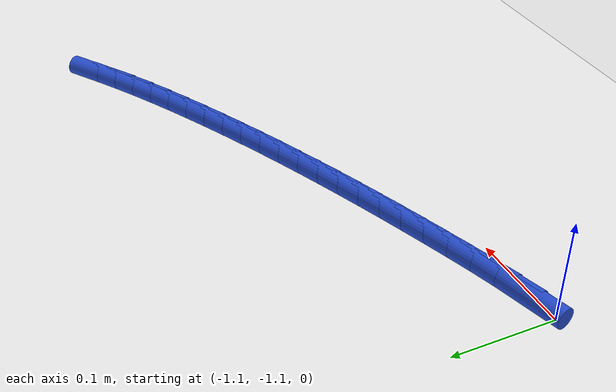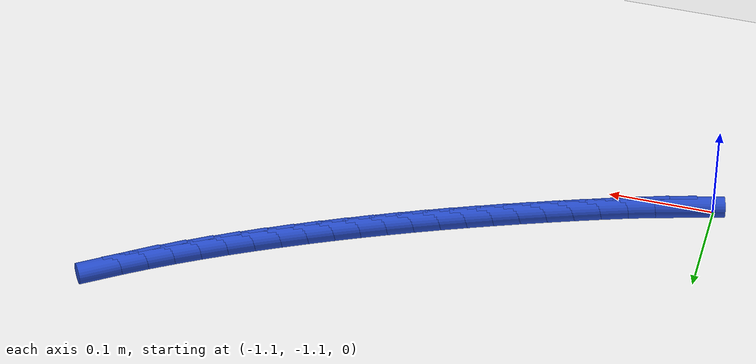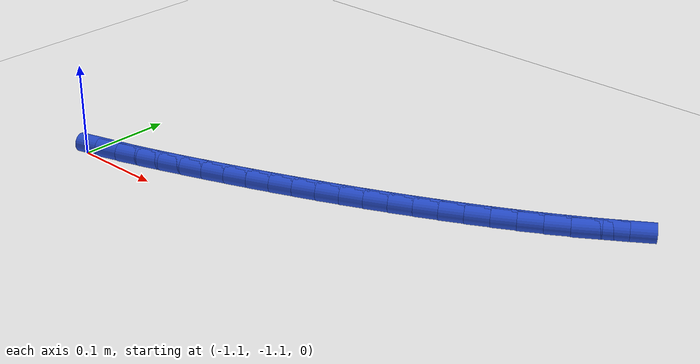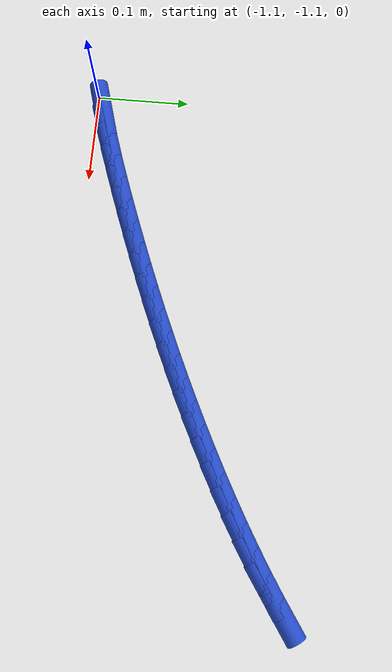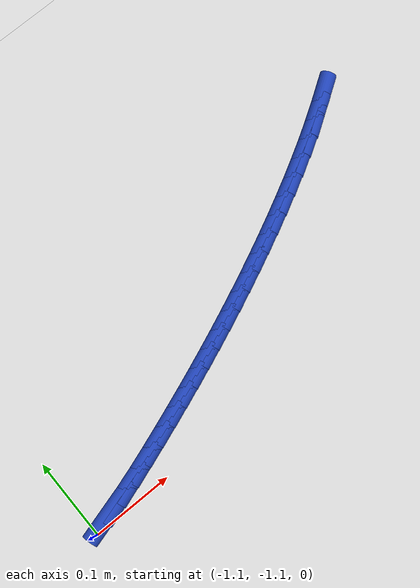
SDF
<sdf version="1.6">
 <world name="default">
  <model name="ground_plane">
   <static>1</static>
   <link name="link">
    <collision name="collision">
     <geometry><plane><normal>0 0 1</normal><size>100 100</size></plane></geometry>
     <surface><friction><ode><mu>100</mu><mu2>50</mu2></ode></friction></surface>
    </collision>
    <visual name="visual">
     <cast_shadows>0</cast_shadows>
     <geometry><plane><normal>0 0 1</normal><size>100 100</size></plane></geometry>
     <material>
      <script><uri>file://media/materials/scripts/gazebo.material</uri><name>Gazebo/WhiteGlow</name></script>
     </material>
    </visual>
   </link>
  </model>
  <model name="line">
   <link name="link_195">
    <pose>-1.0715730849755565 -1.0895766776226592 0.01 0 1.57 0.27192051206933826</pose>
    <collision name="collision">
     <geometry><cylinder><radius>0.01</radius><length>0.08</length></cylinder></geometry>
    </collision>
    <visual name="visual">
     <material>
      <script><name>Gazebo/Blue</name><uri>file://media/materials/scripts/gazebo.material</uri></script>
     </material>
     <geometry><cylinder><radius>0.01</radius><length>0.08</length></cylinder></geometry>
    </visual>
   </link>
   <link name="link_196">
    <pose>-1.0467284860384143 -1.082649336316921 0.01 0 1.57 0.30438728501452234</pose>
    <collision name="collision">
     <geometry><cylinder><radius>0.01</radius><length>0.08</length></cylinder></geometry>
    </collision>
    <visual name="visual">
     <material>
      <script><name>Gazebo/Blue</name><uri>file://media/materials/scripts/gazebo.material</uri></script>
     </material>
     <geometry><cylinder><radius>0.01</radius><length>0.08</length></cylinder></geometry>
    </visual>
   </link>
   <link name="link_197">
    <pose>-1.0219698851356434 -1.0748714239998238 0.01 0 1.57 0.3266762759296236</pose>
    <collision name="collision">
     <geometry><cylinder><radius>0.01</radius><length>0.08</length></cylinder></geometry>
    </collision>
    <visual name="visual">
     <material>
      <script><name>Gazebo/Blue</name><uri>file://media/materials/scripts/gazebo.material</uri></script>
     </material>
     <geometry><cylinder><radius>0.01</radius><length>0.08</length></cylinder></geometry>
    </visual>
   </link>
   <link name="link_198">
    <pose>-0.9973676947961133 -1.066535822973998 0.01 0 1.57 0.3393850757116338</pose>
    <collision name="collision">
     <geometry><cylinder><radius>0.01</radius><length>0.08</length></cylinder></geometry>
    </collision>
    <visual name="visual">
     <material>
      <script><name>Gazebo/Blue</name><uri>file://media/materials/scripts/gazebo.material</uri></script>
     </material>
     <geometry><cylinder><radius>0.01</radius><length>0.08</length></cylinder></geometry>
    </visual>
   </link>
   <link name="link_199">
    <pose>-0.972990683291192 -1.0579296370764888 0.01 0 1.57 0.3474073049099037</pose>
    <collision name="collision">
     <geometry><cylinder><radius>0.01</radius><length>0.08</length></cylinder></geometry>
    </collision>
    <visual name="visual">
     <material>
      <script><name>Gazebo/Blue</name><uri>file://media/materials/scripts/gazebo.material</uri></script>
     </material>
     <geometry><cylinder><radius>0.01</radius><length>0.08</length></cylinder></geometry>
    </visual>
   </link>
   <link name="link_200">
    <pose>-0.948866173849604 -1.049194318534095 0.01 0 1.57 0.355758247584693</pose>
    <collision name="collision">
     <geometry><cylinder><radius>0.01</radius><length>0.08</length></cylinder></geometry>
    </collision>
    <visual name="visual">
     <material>
      <script><name>Gazebo/Blue</name><uri>file://media/materials/scripts/gazebo.material</uri></script>
     </material>
     <geometry><cylinder><radius>0.01</radius><length>0.08</length></cylinder></geometry>
    </visual>
   </link>
   <link name="link_201">
    <pose>-0.924977923456265 -1.0403182133597324 0.01 0 1.57 0.364663436752336</pose>
    <collision name="collision">
     <geometry><cylinder><radius>0.01</radius><length>0.08</length></cylinder></geometry>
    </collision>
    <visual name="visual">
     <material>
      <script><name>Gazebo/Blue</name><uri>file://media/materials/scripts/gazebo.material</uri></script>
     </material>
     <geometry><cylinder><radius>0.01</radius><length>0.08</length></cylinder></geometry>
    </visual>
   </link>
   <link name="link_202">
    <pose>-0.9013076202669899 -1.0312823970154714 0.01 0 1.57 0.3741059560398827</pose>
    <collision name="collision">
     <geometry><cylinder><radius>0.01</radius><length>0.08</length></cylinder></geometry>
    </collision>
    <visual name="visual">
     <material>
      <script><name>Gazebo/Blue</name><uri>file://media/materials/scripts/gazebo.material</uri></script>
     </material>
     <geometry><cylinder><radius>0.01</radius><length>0.08</length></cylinder></geometry>
    </visual>
   </link>
   <link name="link_203">
    <pose>-0.877836952437593 -1.0220679449633814 0.01 0 1.57 0.384064950148533</pose>
    <collision name="collision">
     <geometry><cylinder><radius>0.01</radius><length>0.08</length></cylinder></geometry>
    </collision>
    <visual name="visual">
     <material>
      <script><name>Gazebo/Blue</name><uri>file://media/materials/scripts/gazebo.material</uri></script>
     </material>
     <geometry><cylinder><radius>0.01</radius><length>0.08</length></cylinder></geometry>
    </visual>
   </link>
   <link name="link_204">
    <pose>-0.8545476081238889 -1.0126559326655338 0.01 0 1.57 0.39451568320234653</pose>
    <collision name="collision">
     <geometry><cylinder><radius>0.01</radius><length>0.08</length></cylinder></geometry>
    </collision>
    <visual name="visual">
     <material>
      <script><name>Gazebo/Blue</name><uri>file://media/materials/scripts/gazebo.material</uri></script>
     </material>
     <geometry><cylinder><radius>0.01</radius><length>0.08</length></cylinder></geometry>
    </visual>
   </link>
   <link name="link_205">
    <pose>-0.8314212754816932 -1.0030274355839988 0.01 0 1.57 0.4054296665425406</pose>
    <collision name="collision">
     <geometry><cylinder><radius>0.01</radius><length>0.08</length></cylinder></geometry>
    </collision>
    <visual name="visual">
     <material>
      <script><name>Gazebo/Blue</name><uri>file://media/materials/scripts/gazebo.material</uri></script>
     </material>
     <geometry><cylinder><radius>0.01</radius><length>0.08</length></cylinder></geometry>
    </visual>
   </link>
   <link name="link_206">
    <pose>-0.8084396426668203 -0.9931635291808456 0.01 0 1.57 0.4167748577741152</pose>
    <collision name="collision">
     <geometry><cylinder><radius>0.01</radius><length>0.08</length></cylinder></geometry>
    </collision>
    <visual name="visual">
     <material>
      <script><name>Gazebo/Blue</name><uri>file://media/materials/scripts/gazebo.material</uri></script>
     </material>
     <geometry><cylinder><radius>0.01</radius><length>0.08</length></cylinder></geometry>
    </visual>
   </link>
   <link name="link_207">
    <pose>-0.785584397835085 -0.9830452889181458 0.01 0 1.57 0.42851593053016046</pose>
    <collision name="collision">
     <geometry><cylinder><radius>0.01</radius><length>0.08</length></cylinder></geometry>
    </collision>
    <visual name="visual">
     <material>
      <script><name>Gazebo/Blue</name><uri>file://media/materials/scripts/gazebo.material</uri></script>
     </material>
     <geometry><cylinder><radius>0.01</radius><length>0.08</length></cylinder></geometry>
    </visual>
   </link>
   <link name="link_208">
    <pose>-0.7628372291423018 -0.9726537902579687 0.01 0 1.57 0.44061461187316475</pose>
    <collision name="collision">
     <geometry><cylinder><radius>0.01</radius><length>0.08</length></cylinder></geometry>
    </collision>
    <visual name="visual">
     <material>
      <script><name>Gazebo/Blue</name><uri>file://media/materials/scripts/gazebo.material</uri></script>
     </material>
     <geometry><cylinder><radius>0.01</radius><length>0.08</length></cylinder></geometry>
    </visual>
   </link>
   <link name="link_209">
    <pose>-0.7401798247442858 -0.9619701086623855 0.01 0 1.57 0.4530402506122273</pose>
    <collision name="collision">
     <geometry><cylinder><radius>0.01</radius><length>0.08</length></cylinder></geometry>
    </collision>
    <visual name="visual">
     <material>
      <script><name>Gazebo/Blue</name><uri>file://media/materials/scripts/gazebo.material</uri></script>
     </material>
     <geometry><cylinder><radius>0.01</radius><length>0.08</length></cylinder></geometry>
    </visual>
   </link>
   <link name="link_210">
    <pose>-0.7175943368358818 -0.9509752613883439 0.01 0 1.57 0.466317318169814</pose>
    <collision name="collision">
     <geometry><cylinder><radius>0.01</radius><length>0.08</length></cylinder></geometry>
    </collision>
    <visual name="visual">
     <material>
      <script><name>Gazebo/Blue</name><uri>file://media/materials/scripts/gazebo.material</uri></script>
     </material>
     <geometry><cylinder><radius>0.01</radius><length>0.08</length></cylinder></geometry>
    </visual>
   </link>
   <link name="link_211">
    <pose>-0.6950883719736392 -0.9396470729134794 0.01 0 1.57 0.4812947431682682</pose>
    <collision name="collision">
     <geometry><cylinder><radius>0.01</radius><length>0.08</length></cylinder></geometry>
    </collision>
    <visual name="visual">
     <material>
      <script><name>Gazebo/Blue</name><uri>file://media/materials/scripts/gazebo.material</uri></script>
     </material>
     <geometry><cylinder><radius>0.01</radius><length>0.08</length></cylinder></geometry>
    </visual>
   </link>
   <link name="link_212">
    <pose>-0.6727076759124031 -0.9279585838577608 0.01 0 1.57 0.49807832457839796</pose>
    <collision name="collision">
     <geometry><cylinder><radius>0.01</radius><length>0.08</length></cylinder></geometry>
    </collision>
    <visual name="visual">
     <material>
      <script><name>Gazebo/Blue</name><uri>file://media/materials/scripts/gazebo.material</uri></script>
     </material>
     <geometry><cylinder><radius>0.01</radius><length>0.08</length></cylinder></geometry>
    </visual>
   </link>
   <link name="link_213">
    <pose>-0.6505011261700103 -0.9158824420193602 0.01 0 1.57 0.5167125765324377</pose>
    <collision name="collision">
     <geometry><cylinder><radius>0.01</radius><length>0.08</length></cylinder></geometry>
    </collision>
    <visual name="visual">
     <material>
      <script><name>Gazebo/Blue</name><uri>file://media/materials/scripts/gazebo.material</uri></script>
     </material>
     <geometry><cylinder><radius>0.01</radius><length>0.08</length></cylinder></geometry>
    </visual>
   </link>
   <link name="link_214">
    <pose>-0.6285176002642998 -0.9033912951964507 0.01 0 1.57 0.5372479722426985</pose>
    <collision name="collision">
     <geometry><cylinder><radius>0.01</radius><length>0.08</length></cylinder></geometry>
    </collision>
    <visual name="visual">
     <material>
      <script><name>Gazebo/Blue</name><uri>file://media/materials/scripts/gazebo.material</uri></script>
     </material>
     <geometry><cylinder><radius>0.01</radius><length>0.08</length></cylinder></geometry>
    </visual>
   </link>
   <link name="link_215">
    <pose>-0.6068059757131081 -0.8904577911872039 0.01 0 1.57 0.5597392978690089</pose>
    <collision name="collision">
     <geometry><cylinder><radius>0.01</radius><length>0.08</length></cylinder></geometry>
    </collision>
    <visual name="visual">
     <material>
      <script><name>Gazebo/Blue</name><uri>file://media/materials/scripts/gazebo.material</uri></script>
     </material>
     <geometry><cylinder><radius>0.01</radius><length>0.08</length></cylinder></geometry>
    </visual>
   </link>
   <link name="link_216">
    <pose>-0.5854151300342735 -0.8770545777897926 0.01 0 1.57 0.5842436719195832</pose>
    <collision name="collision">
     <geometry><cylinder><radius>0.01</radius><length>0.08</length></cylinder></geometry>
    </collision>
    <visual name="visual">
     <material>
      <script><name>Gazebo/Blue</name><uri>file://media/materials/scripts/gazebo.material</uri></script>
     </material>
     <geometry><cylinder><radius>0.01</radius><length>0.08</length></cylinder></geometry>
    </visual>
   </link>
  </model>
 </world>
</sdf>
